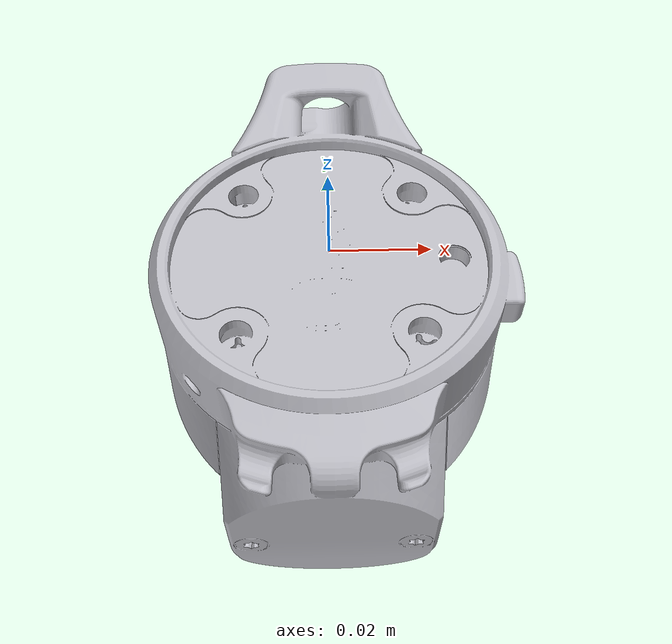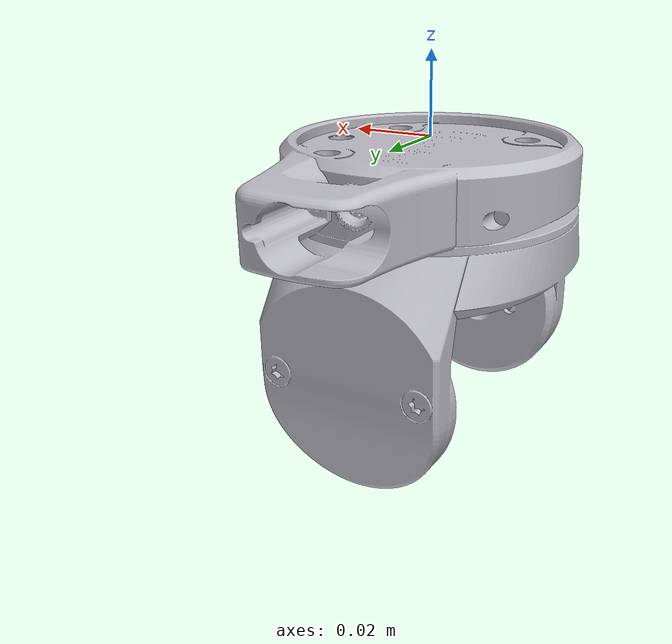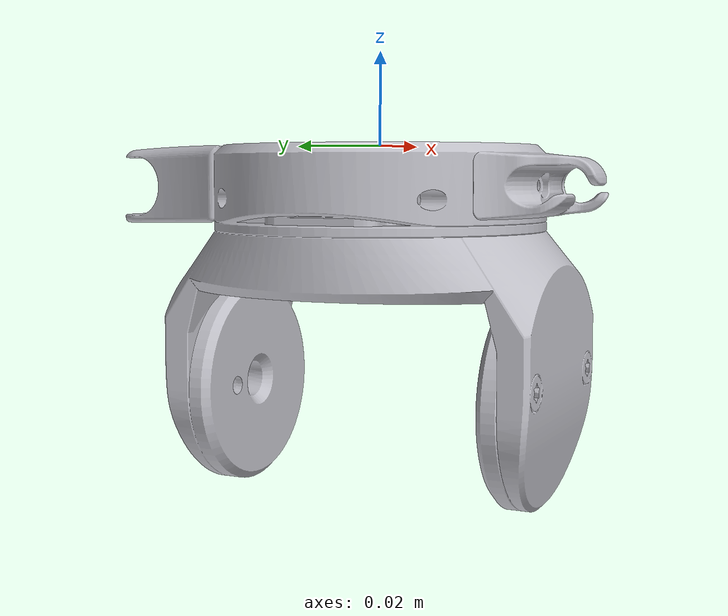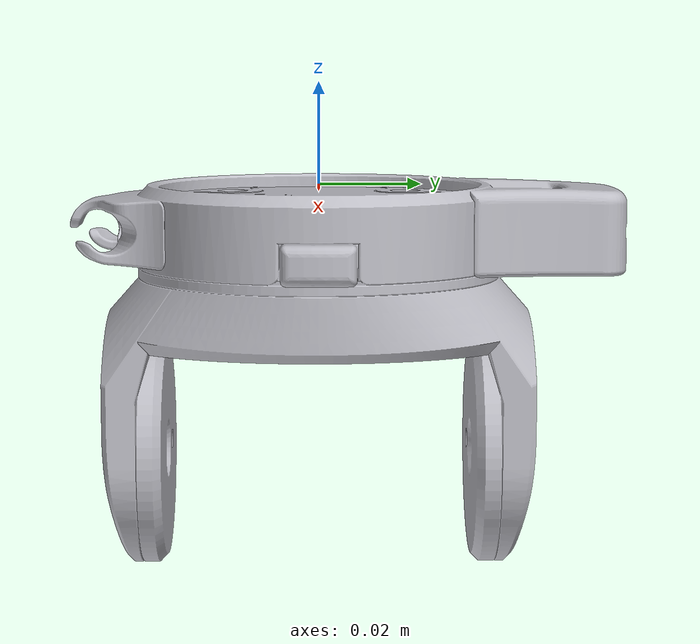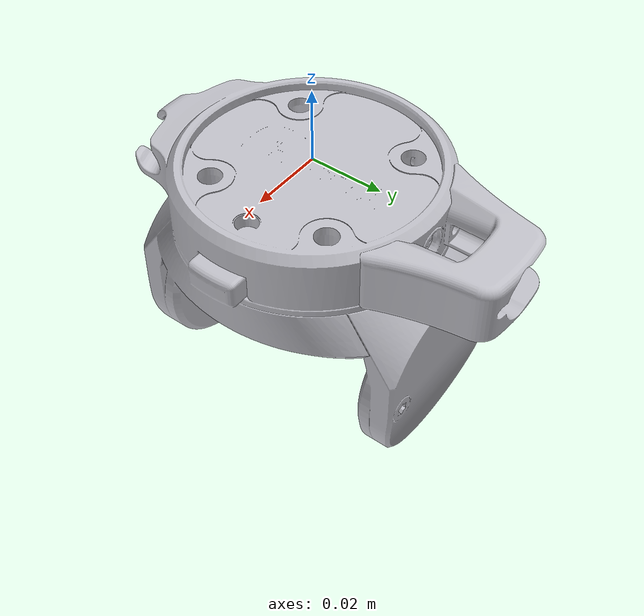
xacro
<?xml version="1.0"?>
<robot name="scene" xmlns:xacro="http://www.ros.org/wiki/xacro">

  <!-- Scene macro -->
  <xacro:include
    filename="$(find scene_description)/urdf/scene_prefixed.urdf.xacro"/>

  <!-- Launch arguments -->
  <xacro:arg name="prefix" default="sd1_"/>
  <xacro:arg name="mesh_pkg" default="scene_description"/>
  <xacro:arg name="mesh_subdir" default="meshes/visual"/>
  <xacro:arg name="color_primary" default="0.75 0.75 0.78 1.0"/>

  <!-- Instantiate -->
  <xacro:scene_model
    prefix="$(arg prefix)"
    mesh_pkg="$(arg mesh_pkg)"
    mesh_subdir="$(arg mesh_subdir)"
    color_primary="$(arg color_primary)"/>

</robot>

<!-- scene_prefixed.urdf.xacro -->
<robot xmlns:xacro="http://www.ros.org/wiki/xacro">

  <xacro:macro name="scene_model"
               params="
                 prefix
                 mesh_pkg
                 mesh_subdir
                 color_primary">

    <!-- Prefixed material -->
    <material name="${prefix}scene_material">
      <color rgba="${color_primary}"/>
    </material>

    <!-- Dummy root -->
    <link name="${prefix}world"/>

    <!-- Scene link -->
    <link name="${prefix}base_link">
      <inertial>
        <origin xyz="1.1342588136112335 -0.02214841975228302 0.6612820854300633" rpy="0 0 0"/>
        <mass value="1596.2128206057669"/>
        <inertia
          ixx="2131.62125"
          iyy="635.241174"
          izz="2488.864681"
          ixy="29.498323"
          iyz="-3.037225"
          ixz="-1.47522"/>
      </inertial>

      <visual>
        <geometry>
          <mesh
            filename="package://${mesh_pkg}/${mesh_subdir}/base_link.stl"
            scale="0.001 0.001 0.001"/>
        </geometry>
        <material name="${prefix}scene_material"/>
      </visual>

      <collision>
        <geometry>
          <mesh
            filename="package://${mesh_pkg}/${mesh_subdir}/base_link.stl"
            scale="0.001 0.001 0.001"/>
        </geometry>
      </collision>
    </link>

    <!-- Fix to world -->
    <joint name="${prefix}world_to_base" type="fixed">
      <parent link="${prefix}world"/>
      <child link="${prefix}base_link"/>
    </joint>

  </xacro:macro>

</robot>
